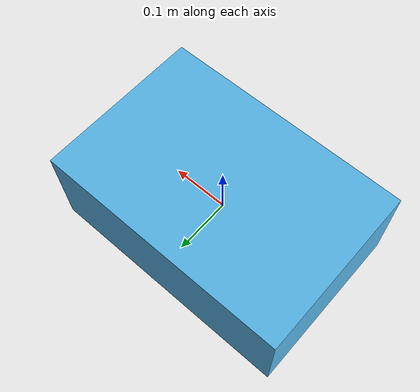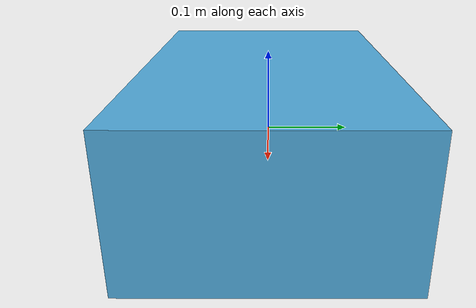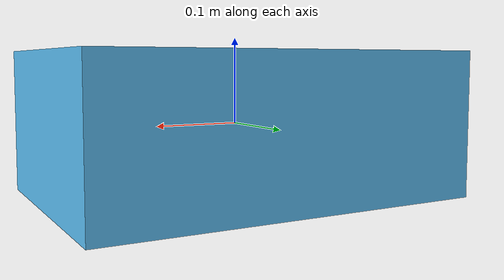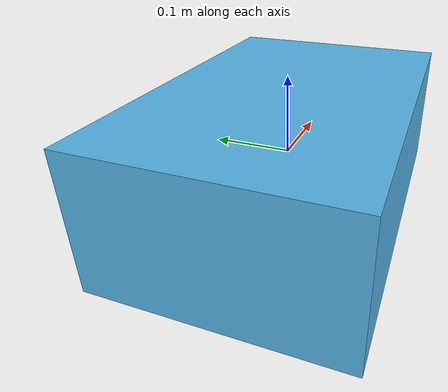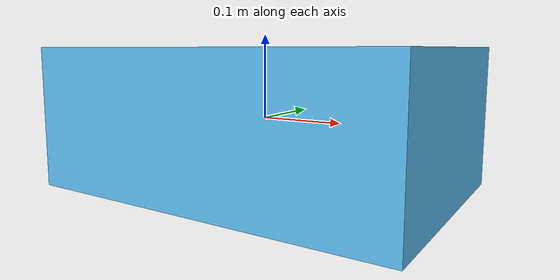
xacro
<?xml version="1.0"?>
<robot xmlns:xacro="http://www.ros.org/wiki/xacro">

    <link name="base_link" />

    <link name="chassis_link">
        <visual>
            <geometry>
                <box size="0.45 0.3 0.17" />
            </geometry>
        </visual>
        <collision>
            <geometry>
                <box size="0.45 0.3 0.17" />
            </geometry>
        </collision>
        <inertial>
            <mass value="0.1518" />
            <inertia
                ixx="0.001504085"
                ixy="0.0"
                ixz="0.0"
                iyy="0.00292721"
                iyz="0.0"
                izz="0.003700125"
            />
        </inertial>
    </link>

    <joint name="chassis_joint" type="fixed" >
        <parent link="base_link" />
        <child link="chassis_link" />
        <origin xyz="0 0 0" />
    </joint>

</robot>
